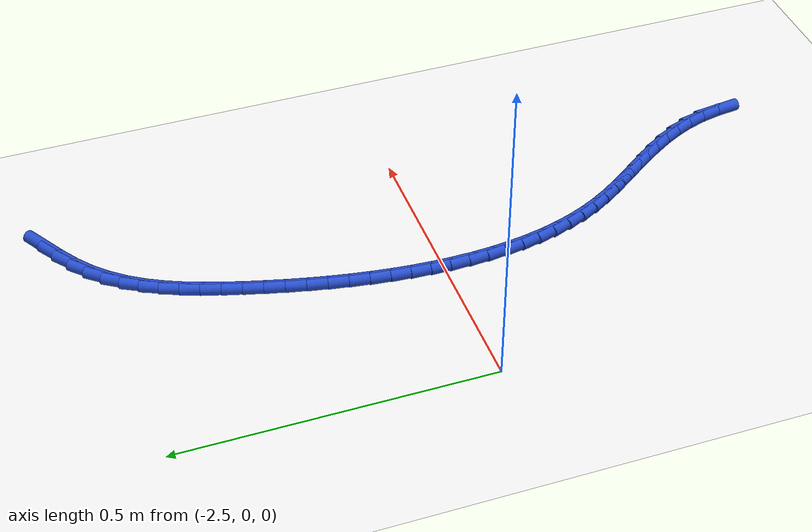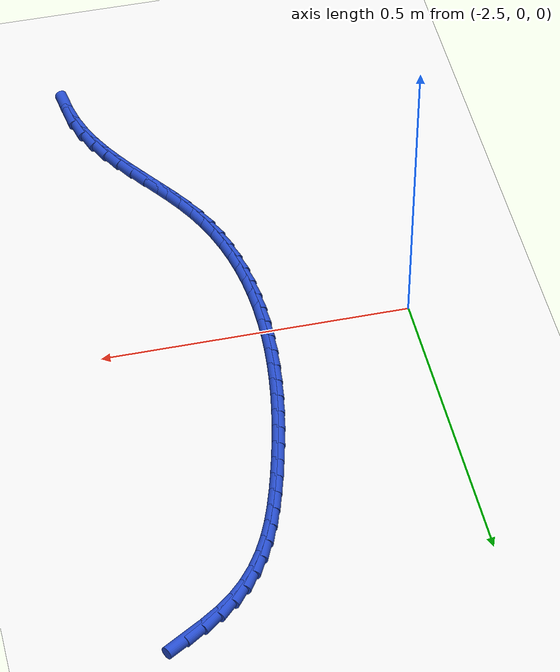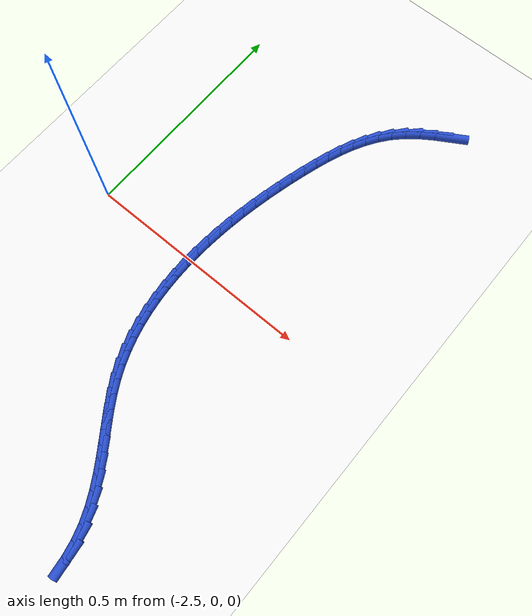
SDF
<sdf version="1.6">
 <world name="default">
  <model name="ground_plane">
   <static>1</static>
   <link name="link">
    <collision name="collision">
     <geometry><plane><normal>0 0 1</normal><size>100 100</size></plane></geometry>
     <surface><friction><ode><mu>100</mu><mu2>50</mu2></ode></friction></surface>
    </collision>
    <visual name="visual">
     <cast_shadows>0</cast_shadows>
     <geometry><plane><normal>0 0 1</normal><size>100 100</size></plane></geometry>
     <material>
      <script><uri>file://media/materials/scripts/gazebo.material</uri><name>Gazebo/WhiteGlow</name></script>
     </material>
    </visual>
   </link>
  </model>
  <model name="line">
   <link name="link_103">
    <pose>-2.0197193168108467 0.5723937335210932 0.01 0 1.57 0.537502704024936</pose>
    <collision name="collision">
     <geometry><cylinder><radius>0.01</radius><length>0.08</length></cylinder></geometry>
    </collision>
    <visual name="visual">
     <material>
      <script><name>Gazebo/Blue</name><uri>file://media/materials/scripts/gazebo.material</uri></script>
     </material>
     <geometry><cylinder><radius>0.01</radius><length>0.08</length></cylinder></geometry>
    </visual>
   </link>
   <link name="link_104">
    <pose>-2.0485548248478143 0.5552066151177771 0.01 0 1.57 0.5918836309870299</pose>
    <collision name="collision">
     <geometry><cylinder><radius>0.01</radius><length>0.08</length></cylinder></geometry>
    </collision>
    <visual name="visual">
     <material>
      <script><name>Gazebo/Blue</name><uri>file://media/materials/scripts/gazebo.material</uri></script>
     </material>
     <geometry><cylinder><radius>0.01</radius><length>0.08</length></cylinder></geometry>
    </visual>
   </link>
   <link name="link_105">
    <pose>-2.075838725705111 0.5368639987434548 0.01 0 1.57 0.6782758042307528</pose>
    <collision name="collision">
     <geometry><cylinder><radius>0.01</radius><length>0.08</length></cylinder></geometry>
    </collision>
    <visual name="visual">
     <material>
      <script><name>Gazebo/Blue</name><uri>file://media/materials/scripts/gazebo.material</uri></script>
     </material>
     <geometry><cylinder><radius>0.01</radius><length>0.08</length></cylinder></geometry>
    </visual>
   </link>
   <link name="link_106">
    <pose>-2.1006558146092376 0.5168660500432628 0.01 0 1.57 0.7903277123077719</pose>
    <collision name="collision">
     <geometry><cylinder><radius>0.01</radius><length>0.08</length></cylinder></geometry>
    </collision>
    <visual name="visual">
     <material>
      <script><name>Gazebo/Blue</name><uri>file://media/materials/scripts/gazebo.material</uri></script>
     </material>
     <geometry><cylinder><radius>0.01</radius><length>0.08</length></cylinder></geometry>
    </visual>
   </link>
   <link name="link_107">
    <pose>-2.1224124997302964 0.49489379924768917 0.01 0 1.57 0.8994665018333661</pose>
    <collision name="collision">
     <geometry><cylinder><radius>0.01</radius><length>0.08</length></cylinder></geometry>
    </collision>
    <visual name="visual">
     <material>
      <script><name>Gazebo/Blue</name><uri>file://media/materials/scripts/gazebo.material</uri></script>
     </material>
     <geometry><cylinder><radius>0.01</radius><length>0.08</length></cylinder></geometry>
    </visual>
   </link>
   <link name="link_108">
    <pose>-2.141326901984766 0.47108475724888277 0.01 0 1.57 0.9976891044029345</pose>
    <collision name="collision">
     <geometry><cylinder><radius>0.01</radius><length>0.08</length></cylinder></geometry>
    </collision>
    <visual name="visual">
     <material>
      <script><name>Gazebo/Blue</name><uri>file://media/materials/scripts/gazebo.material</uri></script>
     </material>
     <geometry><cylinder><radius>0.01</radius><length>0.08</length></cylinder></geometry>
    </visual>
   </link>
   <link name="link_109">
    <pose>-2.1577432227931705 0.44564733848481786 0.01 0 1.57 1.0826233466722737</pose>
    <collision name="collision">
     <geometry><cylinder><radius>0.01</radius><length>0.08</length></cylinder></geometry>
    </collision>
    <visual name="visual">
     <material>
      <script><name>Gazebo/Blue</name><uri>file://media/materials/scripts/gazebo.material</uri></script>
     </material>
     <geometry><cylinder><radius>0.01</radius><length>0.08</length></cylinder></geometry>
    </visual>
   </link>
   <link name="link_110">
    <pose>-2.1720056635760328 0.418789957393469 0.01 0 1.57 1.1532361355497558</pose>
    <collision name="collision">
     <geometry><cylinder><radius>0.01</radius><length>0.08</length></cylinder></geometry>
    </collision>
    <visual name="visual">
     <material>
      <script><name>Gazebo/Blue</name><uri>file://media/materials/scripts/gazebo.material</uri></script>
     </material>
     <geometry><cylinder><radius>0.01</radius><length>0.08</length></cylinder></geometry>
    </visual>
   </link>
   <link name="link_111">
    <pose>-2.184458425753877 0.39072102841281053 0.01 0 1.57 1.2094569460566007</pose>
    <collision name="collision">
     <geometry><cylinder><radius>0.01</radius><length>0.08</length></cylinder></geometry>
    </collision>
    <visual name="visual">
     <material>
      <script><name>Gazebo/Blue</name><uri>file://media/materials/scripts/gazebo.material</uri></script>
     </material>
     <geometry><cylinder><radius>0.01</radius><length>0.08</length></cylinder></geometry>
    </visual>
   </link>
   <link name="link_112">
    <pose>-2.1954457107472285 0.36164896598081736 0.01 0 1.57 1.2517477222894497</pose>
    <collision name="collision">
     <geometry><cylinder><radius>0.01</radius><length>0.08</length></cylinder></geometry>
    </collision>
    <visual name="visual">
     <material>
      <script><name>Gazebo/Blue</name><uri>file://media/materials/scripts/gazebo.material</uri></script>
     </material>
     <geometry><cylinder><radius>0.01</radius><length>0.08</length></cylinder></geometry>
    </visual>
   </link>
   <link name="link_113">
    <pose>-2.20531171997661 0.3317821845354638 0.01 0 1.57 1.2807682912476095</pose>
    <collision name="collision">
     <geometry><cylinder><radius>0.01</radius><length>0.08</length></cylinder></geometry>
    </collision>
    <visual name="visual">
     <material>
      <script><name>Gazebo/Blue</name><uri>file://media/materials/scripts/gazebo.material</uri></script>
     </material>
     <geometry><cylinder><radius>0.01</radius><length>0.08</length></cylinder></geometry>
    </visual>
   </link>
   <link name="link_114">
    <pose>-2.2144002781715124 0.3013289707490363 0.01 0 1.57 1.3007832867178366</pose>
    <collision name="collision">
     <geometry><cylinder><radius>0.01</radius><length>0.08</length></cylinder></geometry>
    </collision>
    <visual name="visual">
     <material>
      <script><name>Gazebo/Blue</name><uri>file://media/materials/scripts/gazebo.material</uri></script>
     </material>
     <geometry><cylinder><radius>0.01</radius><length>0.08</length></cylinder></geometry>
    </visual>
   </link>
   <link name="link_115">
    <pose>-2.222943982136102 0.27045988511748115 0.01 0 1.57 1.3208585349769544</pose>
    <collision name="collision">
     <geometry><cylinder><radius>0.01</radius><length>0.08</length></cylinder></geometry>
    </collision>
    <visual name="visual">
     <material>
      <script><name>Gazebo/Blue</name><uri>file://media/materials/scripts/gazebo.material</uri></script>
     </material>
     <geometry><cylinder><radius>0.01</radius><length>0.08</length></cylinder></geometry>
    </visual>
   </link>
   <link name="link_116">
    <pose>-2.230909735149236 0.2392553704728613 0.01 0 1.57 1.3424008088868276</pose>
    <collision name="collision">
     <geometry><cylinder><radius>0.01</radius><length>0.08</length></cylinder></geometry>
    </collision>
    <visual name="visual">
     <material>
      <script><name>Gazebo/Blue</name><uri>file://media/materials/scripts/gazebo.material</uri></script>
     </material>
     <geometry><cylinder><radius>0.01</radius><length>0.08</length></cylinder></geometry>
    </visual>
   </link>
   <link name="link_117">
    <pose>-2.238225606692101 0.2077826980386304 0.01 0 1.57 1.3655400887093967</pose>
    <collision name="collision">
     <geometry><cylinder><radius>0.01</radius><length>0.08</length></cylinder></geometry>
    </collision>
    <visual name="visual">
     <material>
      <script><name>Gazebo/Blue</name><uri>file://media/materials/scripts/gazebo.material</uri></script>
     </material>
     <geometry><cylinder><radius>0.01</radius><length>0.08</length></cylinder></geometry>
    </visual>
   </link>
   <link name="link_118">
    <pose>-2.2448196662458852 0.17610913903824188 0.01 0 1.57 1.3904195918695983</pose>
    <collision name="collision">
     <geometry><cylinder><radius>0.01</radius><length>0.08</length></cylinder></geometry>
    </collision>
    <visual name="visual">
     <material>
      <script><name>Gazebo/Blue</name><uri>file://media/materials/scripts/gazebo.material</uri></script>
     </material>
     <geometry><cylinder><radius>0.01</radius><length>0.08</length></cylinder></geometry>
    </visual>
   </link>
   <link name="link_119">
    <pose>-2.250619983291774 0.14430196469514928 0.01 0 1.57 1.4171962407203893</pose>
    <collision name="collision">
     <geometry><cylinder><radius>0.01</radius><length>0.08</length></cylinder></geometry>
    </collision>
    <visual name="visual">
     <material>
      <script><name>Gazebo/Blue</name><uri>file://media/materials/scripts/gazebo.material</uri></script>
     </material>
     <geometry><cylinder><radius>0.01</radius><length>0.08</length></cylinder></geometry>
    </visual>
   </link>
   <link name="link_120">
    <pose>-2.2555546273109557 0.11242844623280654 0.01 0 1.57 1.4460407865755183</pose>
    <collision name="collision">
     <geometry><cylinder><radius>0.01</radius><length>0.08</length></cylinder></geometry>
    </collision>
    <visual name="visual">
     <material>
      <script><name>Gazebo/Blue</name><uri>file://media/materials/scripts/gazebo.material</uri></script>
     </material>
     <geometry><cylinder><radius>0.01</radius><length>0.08</length></cylinder></geometry>
    </visual>
   </link>
   <link name="link_121">
    <pose>-2.2595516677846184 0.08055585487466639 0.01 0 1.57 1.4771373839132782</pose>
    <collision name="collision">
     <geometry><cylinder><radius>0.01</radius><length>0.08</length></cylinder></geometry>
    </collision>
    <visual name="visual">
     <material>
      <script><name>Gazebo/Blue</name><uri>file://media/materials/scripts/gazebo.material</uri></script>
     </material>
     <geometry><cylinder><radius>0.01</radius><length>0.08</length></cylinder></geometry>
    </visual>
   </link>
   <link name="link_122">
    <pose>-2.2625391741939485 0.04875146184418275 0.01 0 1.57 1.51068233760486</pose>
    <collision name="collision">
     <geometry><cylinder><radius>0.01</radius><length>0.08</length></cylinder></geometry>
    </collision>
    <visual name="visual">
     <material>
      <script><name>Gazebo/Blue</name><uri>file://media/materials/scripts/gazebo.material</uri></script>
     </material>
     <geometry><cylinder><radius>0.01</radius><length>0.08</length></cylinder></geometry>
    </visual>
   </link>
   <link name="link_123">
    <pose>-2.264445216020135 0.01708253836480919 0.01 0 1.57 1.546881661217393</pose>
    <collision name="collision">
     <geometry><cylinder><radius>0.01</radius><length>0.08</length></cylinder></geometry>
    </collision>
    <visual name="visual">
     <material>
      <script><name>Gazebo/Blue</name><uri>file://media/materials/scripts/gazebo.material</uri></script>
     </material>
     <geometry><cylinder><radius>0.01</radius><length>0.08</length></cylinder></geometry>
    </visual>
   </link>
   <link name="link_124">
    <pose>-2.265197862744363 -0.014383644340000813 0.01 0 1.57 -1.5556456618695682</pose>
    <collision name="collision">
     <geometry><cylinder><radius>0.01</radius><length>0.08</length></cylinder></geometry>
    </collision>
    <visual name="visual">
     <material>
      <script><name>Gazebo/Blue</name><uri>file://media/materials/scripts/gazebo.material</uri></script>
     </material>
     <geometry><cylinder><radius>0.01</radius><length>0.08</length></cylinder></geometry>
    </visual>
   </link>
   <link name="link_125">
    <pose>-2.2647251838478226 -0.045579815046793676 0.01 0 1.57 -1.5135033340781525</pose>
    <collision name="collision">
     <geometry><cylinder><radius>0.01</radius><length>0.08</length></cylinder></geometry>
    </collision>
    <visual name="visual">
     <material>
      <script><name>Gazebo/Blue</name><uri>file://media/materials/scripts/gazebo.material</uri></script>
     </material>
     <geometry><cylinder><radius>0.01</radius><length>0.08</length></cylinder></geometry>
    </visual>
   </link>
   <link name="link_126">
    <pose>-2.262955248811699 -0.07643870253211586 0.01 0 1.57 -1.4680827134914596</pose>
    <collision name="collision">
     <geometry><cylinder><radius>0.01</radius><length>0.08</length></cylinder></geometry>
    </collision>
    <visual name="visual">
     <material>
      <script><name>Gazebo/Blue</name><uri>file://media/materials/scripts/gazebo.material</uri></script>
     </material>
     <geometry><cylinder><radius>0.01</radius><length>0.08</length></cylinder></geometry>
    </visual>
   </link>
   <link name="link_127">
    <pose>-2.2598161271171797 -0.10689303557251387 0.01 0 1.57 -1.4192045924730654</pose>
    <collision name="collision">
     <geometry><cylinder><radius>0.01</radius><length>0.08</length></cylinder></geometry>
    </collision>
    <visual name="visual">
     <material>
      <script><name>Gazebo/Blue</name><uri>file://media/materials/scripts/gazebo.material</uri></script>
     </material>
     <geometry><cylinder><radius>0.01</radius><length>0.08</length></cylinder></geometry>
    </visual>
   </link>
   <link name="link_128">
    <pose>-2.255235888245455 -0.1368755429445342 0.01 0 1.57 -1.3667279803498404</pose>
    <collision name="collision">
     <geometry><cylinder><radius>0.01</radius><length>0.08</length></cylinder></geometry>
    </collision>
    <visual name="visual">
     <material>
      <script><name>Gazebo/Blue</name><uri>file://media/materials/scripts/gazebo.material</uri></script>
     </material>
     <geometry><cylinder><radius>0.01</radius><length>0.08</length></cylinder></geometry>
    </visual>
   </link>
   <link name="link_129">
    <pose>-2.2491426016777085 -0.16631895342472322 0.01 0 1.57 -1.310569953791639</pose>
    <collision name="collision">
     <geometry><cylinder><radius>0.01</radius><length>0.08</length></cylinder></geometry>
    </collision>
    <visual name="visual">
     <material>
      <script><name>Gazebo/Blue</name><uri>file://media/materials/scripts/gazebo.material</uri></script>
     </material>
     <geometry><cylinder><radius>0.01</radius><length>0.08</length></cylinder></geometry>
    </visual>
   </link>
   <link name="link_130">
    <pose>-2.2414643368951293 -0.1951559957896275 0.01 0 1.57 -1.2507284975213409</pose>
    <collision name="collision">
     <geometry><cylinder><radius>0.01</radius><length>0.08</length></cylinder></geometry>
    </collision>
    <visual name="visual">
     <material>
      <script><name>Gazebo/Blue</name><uri>file://media/materials/scripts/gazebo.material</uri></script>
     </material>
     <geometry><cylinder><radius>0.01</radius><length>0.08</length></cylinder></geometry>
    </visual>
   </link>
   <link name="link_131">
    <pose>-2.232129163378905 -0.2233193988157934 0.01 0 1.57 -1.1873065532338742</pose>
    <collision name="collision">
     <geometry><cylinder><radius>0.01</radius><length>0.08</length></cylinder></geometry>
    </collision>
    <visual name="visual">
     <material>
      <script><name>Gazebo/Blue</name><uri>file://media/materials/scripts/gazebo.material</uri></script>
     </material>
     <geometry><cylinder><radius>0.01</radius><length>0.08</length></cylinder></geometry>
    </visual>
   </link>
   <link name="link_132">
    <pose>-2.2210651506102232 -0.25074189127976754 0.01 0 1.57 -1.1205342102224183</pose>
    <collision name="collision">
     <geometry><cylinder><radius>0.01</radius><length>0.08</length></cylinder></geometry>
    </collision>
    <visual name="visual">
     <material>
      <script><name>Gazebo/Blue</name><uri>file://media/materials/scripts/gazebo.material</uri></script>
     </material>
     <geometry><cylinder><radius>0.01</radius><length>0.08</length></cylinder></geometry>
    </visual>
   </link>
   <link name="link_133">
    <pose>-2.2082003680702704 -0.27735620195809624 0.01 0 1.57 -1.053117458441768</pose>
    <collision name="collision">
     <geometry><cylinder><radius>0.01</radius><length>0.08</length></cylinder></geometry>
    </collision>
    <visual name="visual">
     <material>
      <script><name>Gazebo/Blue</name><uri>file://media/materials/scripts/gazebo.material</uri></script>
     </material>
     <geometry><cylinder><radius>0.01</radius><length>0.08</length></cylinder></geometry>
    </visual>
   </link>
   <link name="link_134">
    <pose>-2.1935219162983266 -0.30313121150462047 0.01 0 1.57 -0.9999552162005662</pose>
    <collision name="collision">
     <geometry><cylinder><radius>0.01</radius><length>0.08</length></cylinder></geometry>
    </collision>
    <visual name="visual">
     <material>
      <script><name>Gazebo/Blue</name><uri>file://media/materials/scripts/gazebo.material</uri></script>
     </material>
     <geometry><cylinder><radius>0.01</radius><length>0.08</length></cylinder></geometry>
    </visual>
   </link>
   <link name="link_135">
    <pose>-2.1773846584002787 -0.328261026202048 0.01 0 1.57 -0.9664919519662651</pose>
    <collision name="collision">
     <geometry><cylinder><radius>0.01</radius><length>0.08</length></cylinder></geometry>
    </collision>
    <visual name="visual">
     <material>
      <script><name>Gazebo/Blue</name><uri>file://media/materials/scripts/gazebo.material</uri></script>
     </material>
     <geometry><cylinder><radius>0.01</radius><length>0.08</length></cylinder></geometry>
    </visual>
   </link>
   <link name="link_136">
    <pose>-2.1602848411641307 -0.35302633871138556 0.01 0 1.57 -0.9522642823488123</pose>
    <collision name="collision">
     <geometry><cylinder><radius>0.01</radius><length>0.08</length></cylinder></geometry>
    </collision>
    <visual name="visual">
     <material>
      <script><name>Gazebo/Blue</name><uri>file://media/materials/scripts/gazebo.material</uri></script>
     </material>
     <geometry><cylinder><radius>0.01</radius><length>0.08</length></cylinder></geometry>
    </visual>
   </link>
   <link name="link_137">
    <pose>-2.1427190056448646 -0.3777080219090044 0.01 0 1.57 -0.9568388196146081</pose>
    <collision name="collision">
     <geometry><cylinder><radius>0.01</radius><length>0.08</length></cylinder></geometry>
    </collision>
    <visual name="visual">
     <material>
      <script><name>Gazebo/Blue</name><uri>file://media/materials/scripts/gazebo.material</uri></script>
     </material>
     <geometry><cylinder><radius>0.01</radius><length>0.08</length></cylinder></geometry>
    </visual>
   </link>
   <link name="link_138">
    <pose>-2.12518369289746 -0.40258694867127504 0.01 0 1.57 -0.9799717936839425</pose>
    <collision name="collision">
     <geometry><cylinder><radius>0.01</radius><length>0.08</length></cylinder></geometry>
    </collision>
    <visual name="visual">
     <material>
      <script><name>Gazebo/Blue</name><uri>file://media/materials/scripts/gazebo.material</uri></script>
     </material>
     <geometry><cylinder><radius>0.01</radius><length>0.08</length></cylinder></geometry>
    </visual>
   </link>
   <link name="link_139">
    <pose>-2.1081754439769 -0.42794399187456883 0.01 0 1.57 -1.0215545241603747</pose>
    <collision name="collision">
     <geometry><cylinder><radius>0.01</radius><length>0.08</length></cylinder></geometry>
    </collision>
    <visual name="visual">
     <material>
      <script><name>Gazebo/Blue</name><uri>file://media/materials/scripts/gazebo.material</uri></script>
     </material>
     <geometry><cylinder><radius>0.01</radius><length>0.08</length></cylinder></geometry>
    </visual>
   </link>
   <link name="link_140">
    <pose>-2.0921907999381637 -0.4540600243952566 0.01 0 1.57 -1.0813737176892408</pose>
    <collision name="collision">
     <geometry><cylinder><radius>0.01</radius><length>0.08</length></cylinder></geometry>
    </collision>
    <visual name="visual">
     <material>
      <script><name>Gazebo/Blue</name><uri>file://media/materials/scripts/gazebo.material</uri></script>
     </material>
     <geometry><cylinder><radius>0.01</radius><length>0.08</length></cylinder></geometry>
    </visual>
   </link>
   <link name="link_141">
    <pose>-2.0777263018362335 -0.48121591910970934 0.01 0 1.57 -1.1587017347182427</pose>
    <collision name="collision">
     <geometry><cylinder><radius>0.01</radius><length>0.08</length></cylinder></geometry>
    </collision>
    <visual name="visual">
     <material>
      <script><name>Gazebo/Blue</name><uri>file://media/materials/scripts/gazebo.material</uri></script>
     </material>
     <geometry><cylinder><radius>0.01</radius><length>0.08</length></cylinder></geometry>
    </visual>
   </link>
   <link name="link_142">
    <pose>-2.06527849072609 -0.509692548894298 0.01 0 1.57 -1.2517860118148418</pose>
    <collision name="collision">
     <geometry><cylinder><radius>0.01</radius><length>0.08</length></cylinder></geometry>
    </collision>
    <visual name="visual">
     <material>
      <script><name>Gazebo/Blue</name><uri>file://media/materials/scripts/gazebo.material</uri></script>
     </material>
     <geometry><cylinder><radius>0.01</radius><length>0.08</length></cylinder></geometry>
    </visual>
   </link>
   <link name="link_143">
    <pose>-2.0553439076627154 -0.5397707866253939 0.01 0 1.57 -1.3568032771029965</pose>
    <collision name="collision">
     <geometry><cylinder><radius>0.01</radius><length>0.08</length></cylinder></geometry>
    </collision>
    <visual name="visual">
     <material>
      <script><name>Gazebo/Blue</name><uri>file://media/materials/scripts/gazebo.material</uri></script>
     </material>
     <geometry><cylinder><radius>0.01</radius><length>0.08</length></cylinder></geometry>
    </visual>
   </link>
   <link name="link_144">
    <pose>-2.048401276314093 -0.571717299451353 0.01 0 1.57 -1.4417074360099245</pose>
    <collision name="collision">
     <geometry><cylinder><radius>0.01</radius><length>0.08</length></cylinder></geometry>
    </collision>
    <visual name="visual">
     <material>
      <script><name>Gazebo/Blue</name><uri>file://media/materials/scripts/gazebo.material</uri></script>
     </material>
     <geometry><cylinder><radius>0.01</radius><length>0.08</length></cylinder></geometry>
    </visual>
   </link>
  </model>
 </world>
</sdf>
